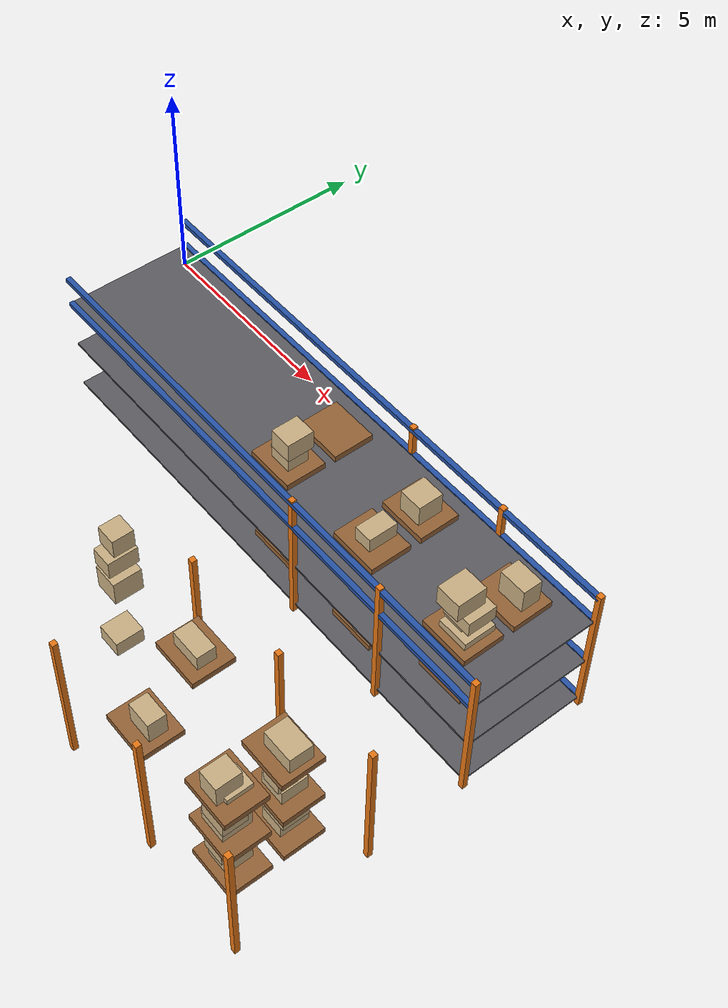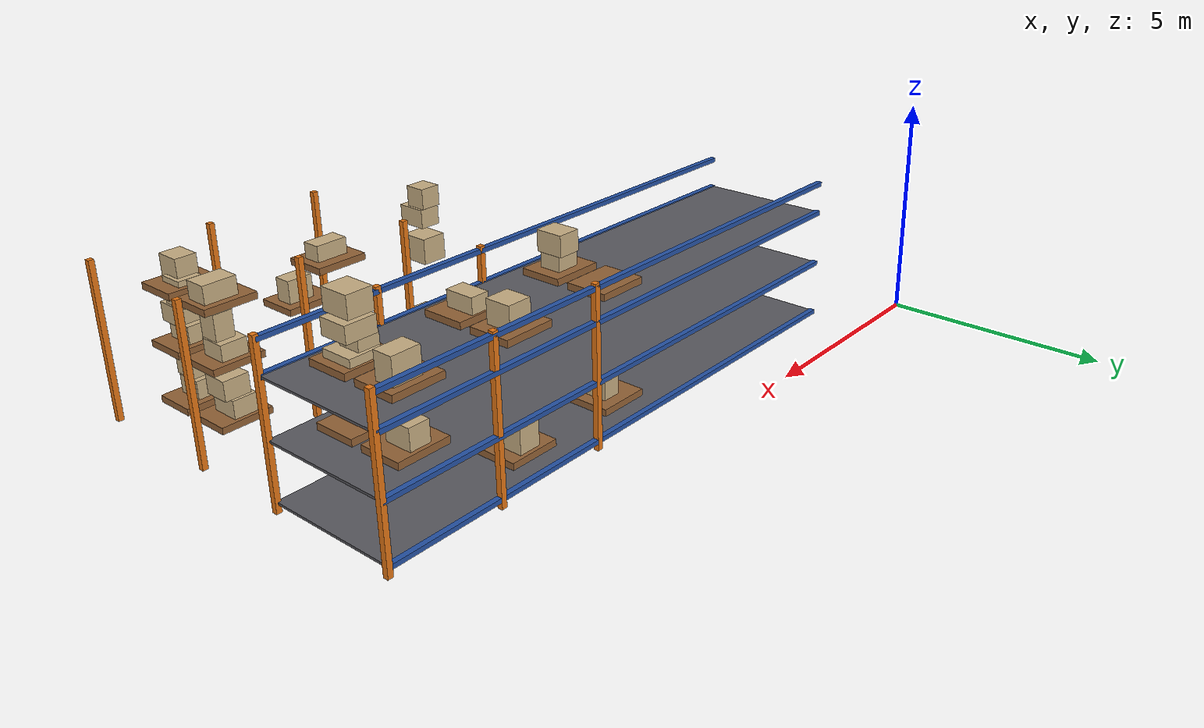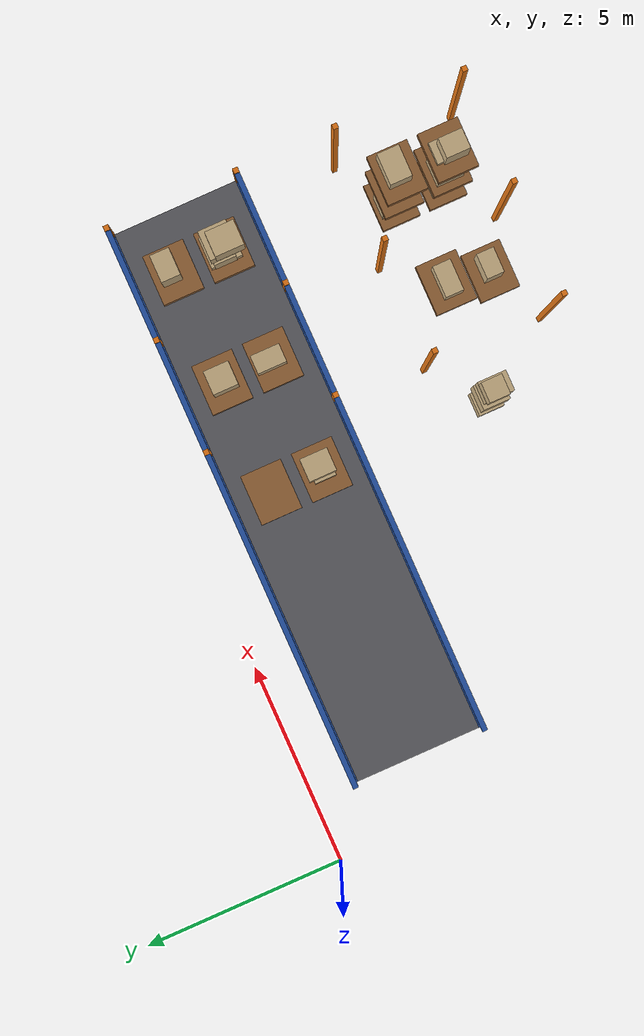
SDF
<sdf version="1.7">
 <world name="default">
  <model name="warehouse_racks">
   <static>1</static>
   <link name="r01_u3_0">
    <pose>9.8 -9.5 1.75 0 0 0</pose>
    <collision name="c"><geometry><box><size>0.12 0.12 3.5</size></box></geometry></collision>
    <visual name="v">
     <geometry><box><size>0.12 0.12 3.5</size></box></geometry>
     <material>
      <ambient>0.910 0.471 0.086 1</ambient>
      <diffuse>0.910 0.471 0.086 1</diffuse>
      <specular>0.1 0.1 0.1 1</specular>
     </material>
    </visual>
   </link>
   <link name="r01_u3_1">
    <pose>9.8 -6.5 1.75 0 0 0</pose>
    <collision name="c"><geometry><box><size>0.12 0.12 3.5</size></box></geometry></collision>
    <visual name="v">
     <geometry><box><size>0.12 0.12 3.5</size></box></geometry>
     <material>
      <ambient>0.910 0.471 0.086 1</ambient>
      <diffuse>0.910 0.471 0.086 1</diffuse>
      <specular>0.1 0.1 0.1 1</specular>
     </material>
    </visual>
   </link>
   <link name="r01_u4_0">
    <pose>12.4 -9.5 1.75 0 0 0</pose>
    <collision name="c"><geometry><box><size>0.12 0.12 3.5</size></box></geometry></collision>
    <visual name="v">
     <geometry><box><size>0.12 0.12 3.5</size></box></geometry>
     <material>
      <ambient>0.910 0.471 0.086 1</ambient>
      <diffuse>0.910 0.471 0.086 1</diffuse>
      <specular>0.1 0.1 0.1 1</specular>
     </material>
    </visual>
   </link>
   <link name="r01_u4_1">
    <pose>12.4 -6.5 1.75 0 0 0</pose>
    <collision name="c"><geometry><box><size>0.12 0.12 3.5</size></box></geometry></collision>
    <visual name="v">
     <geometry><box><size>0.12 0.12 3.5</size></box></geometry>
     <material>
      <ambient>0.910 0.471 0.086 1</ambient>
      <diffuse>0.910 0.471 0.086 1</diffuse>
      <specular>0.1 0.1 0.1 1</specular>
     </material>
    </visual>
   </link>
   <link name="r01_u5_0">
    <pose>15 -9.5 1.75 0 0 0</pose>
    <collision name="c"><geometry><box><size>0.12 0.12 3.5</size></box></geometry></collision>
    <visual name="v">
     <geometry><box><size>0.12 0.12 3.5</size></box></geometry>
     <material>
      <ambient>0.910 0.471 0.086 1</ambient>
      <diffuse>0.910 0.471 0.086 1</diffuse>
      <specular>0.1 0.1 0.1 1</specular>
     </material>
    </visual>
   </link>
   <link name="r01_u5_1">
    <pose>15 -6.5 1.75 0 0 0</pose>
    <collision name="c"><geometry><box><size>0.12 0.12 3.5</size></box></geometry></collision>
    <visual name="v">
     <geometry><box><size>0.12 0.12 3.5</size></box></geometry>
     <material>
      <ambient>0.910 0.471 0.086 1</ambient>
      <diffuse>0.910 0.471 0.086 1</diffuse>
      <specular>0.1 0.1 0.1 1</specular>
     </material>
    </visual>
   </link>
   <link name="r11_u3_0">
    <pose>9.8 -4.2 1.75 0 0 0</pose>
    <collision name="c"><geometry><box><size>0.12 0.12 3.5</size></box></geometry></collision>
    <visual name="v">
     <geometry><box><size>0.12 0.12 3.5</size></box></geometry>
     <material>
      <ambient>0.910 0.471 0.086 1</ambient>
      <diffuse>0.910 0.471 0.086 1</diffuse>
      <specular>0.1 0.1 0.1 1</specular>
     </material>
    </visual>
   </link>
   <link name="r11_u3_1">
    <pose>9.8 -1.2 1.75 0 0 0</pose>
    <collision name="c"><geometry><box><size>0.12 0.12 3.5</size></box></geometry></collision>
    <visual name="v">
     <geometry><box><size>0.12 0.12 3.5</size></box></geometry>
     <material>
      <ambient>0.910 0.471 0.086 1</ambient>
      <diffuse>0.910 0.471 0.086 1</diffuse>
      <specular>0.1 0.1 0.1 1</specular>
     </material>
    </visual>
   </link>
   <link name="r11_u4_0">
    <pose>12.4 -4.2 1.75 0 0 0</pose>
    <collision name="c"><geometry><box><size>0.12 0.12 3.5</size></box></geometry></collision>
    <visual name="v">
     <geometry><box><size>0.12 0.12 3.5</size></box></geometry>
     <material>
      <ambient>0.910 0.471 0.086 1</ambient>
      <diffuse>0.910 0.471 0.086 1</diffuse>
      <specular>0.1 0.1 0.1 1</specular>
     </material>
    </visual>
   </link>
   <link name="r11_u4_1">
    <pose>12.4 -1.2 1.75 0 0 0</pose>
    <collision name="c"><geometry><box><size>0.12 0.12 3.5</size></box></geometry></collision>
    <visual name="v">
     <geometry><box><size>0.12 0.12 3.5</size></box></geometry>
     <material>
      <ambient>0.910 0.471 0.086 1</ambient>
      <diffuse>0.910 0.471 0.086 1</diffuse>
      <specular>0.1 0.1 0.1 1</specular>
     </material>
    </visual>
   </link>
   <link name="r11_u5_0">
    <pose>15 -4.2 1.75 0 0 0</pose>
    <collision name="c"><geometry><box><size>0.12 0.12 3.5</size></box></geometry></collision>
    <visual name="v">
     <geometry><box><size>0.12 0.12 3.5</size></box></geometry>
     <material>
      <ambient>0.910 0.471 0.086 1</ambient>
      <diffuse>0.910 0.471 0.086 1</diffuse>
      <specular>0.1 0.1 0.1 1</specular>
     </material>
    </visual>
   </link>
   <link name="r11_u5_1">
    <pose>15 -1.2 1.75 0 0 0</pose>
    <collision name="c"><geometry><box><size>0.12 0.12 3.5</size></box></geometry></collision>
    <visual name="v">
     <geometry><box><size>0.12 0.12 3.5</size></box></geometry>
     <material>
      <ambient>0.910 0.471 0.086 1</ambient>
      <diffuse>0.910 0.471 0.086 1</diffuse>
      <specular>0.1 0.1 0.1 1</specular>
     </material>
    </visual>
   </link>
   <link name="r11_b0_1">
    <pose>8.5 -1.2 0.2 0 0 0</pose>
    <collision name="c"><geometry><box><size>13 0.12 0.1</size></box></geometry></collision>
    <visual name="v">
     <geometry><box><size>13 0.12 0.1</size></box></geometry>
     <material>
      <ambient>0.149 0.329 0.659 1</ambient>
      <diffuse>0.149 0.329 0.659 1</diffuse>
      <specular>0.1 0.1 0.1 1</specular>
     </material>
    </visual>
   </link>
   <link name="r11_b1_1">
    <pose>8.5 -1.2 1.45 0 0 0</pose>
    <collision name="c"><geometry><box><size>13 0.12 0.1</size></box></geometry></collision>
    <visual name="v">
     <geometry><box><size>13 0.12 0.1</size></box></geometry>
     <material>
      <ambient>0.149 0.329 0.659 1</ambient>
      <diffuse>0.149 0.329 0.659 1</diffuse>
      <specular>0.1 0.1 0.1 1</specular>
     </material>
    </visual>
   </link>
   <link name="r11_b2_0">
    <pose>8.5 -4.2 2.7 0 0 0</pose>
    <collision name="c"><geometry><box><size>13 0.12 0.1</size></box></geometry></collision>
    <visual name="v">
     <geometry><box><size>13 0.12 0.1</size></box></geometry>
     <material>
      <ambient>0.149 0.329 0.659 1</ambient>
      <diffuse>0.149 0.329 0.659 1</diffuse>
      <specular>0.1 0.1 0.1 1</specular>
     </material>
    </visual>
   </link>
   <link name="r11_b2_1">
    <pose>8.5 -1.2 2.7 0 0 0</pose>
    <collision name="c"><geometry><box><size>13 0.12 0.1</size></box></geometry></collision>
    <visual name="v">
     <geometry><box><size>13 0.12 0.1</size></box></geometry>
     <material>
      <ambient>0.149 0.329 0.659 1</ambient>
      <diffuse>0.149 0.329 0.659 1</diffuse>
      <specular>0.1 0.1 0.1 1</specular>
     </material>
    </visual>
   </link>
   <link name="r11_b3_0">
    <pose>8.5 -4.2 3.4 0 0 0</pose>
    <collision name="c"><geometry><box><size>13 0.12 0.1</size></box></geometry></collision>
    <visual name="v">
     <geometry><box><size>13 0.12 0.1</size></box></geometry>
     <material>
      <ambient>0.149 0.329 0.659 1</ambient>
      <diffuse>0.149 0.329 0.659 1</diffuse>
      <specular>0.1 0.1 0.1 1</specular>
     </material>
    </visual>
   </link>
   <link name="r11_b3_1">
    <pose>8.5 -1.2 3.4 0 0 0</pose>
    <collision name="c"><geometry><box><size>13 0.12 0.1</size></box></geometry></collision>
    <visual name="v">
     <geometry><box><size>13 0.12 0.1</size></box></geometry>
     <material>
      <ambient>0.149 0.329 0.659 1</ambient>
      <diffuse>0.149 0.329 0.659 1</diffuse>
      <specular>0.1 0.1 0.1 1</specular>
     </material>
    </visual>
   </link>
   <link name="r11_d0">
    <pose>8.5 -2.7 0.2 0 0 0</pose>
    <collision name="c"><geometry><box><size>13 3 0.05</size></box></geometry></collision>
    <visual name="v">
     <geometry><box><size>13 3 0.05</size></box></geometry>
     <material>
      <ambient>0.361 0.361 0.384 1</ambient>
      <diffuse>0.361 0.361 0.384 1</diffuse>
      <specular>0.1 0.1 0.1 1</specular>
     </material>
    </visual>
   </link>
   <link name="r11_d1">
    <pose>8.5 -2.7 1.45 0 0 0</pose>
    <collision name="c"><geometry><box><size>13 3 0.05</size></box></geometry></collision>
    <visual name="v">
     <geometry><box><size>13 3 0.05</size></box></geometry>
     <material>
      <ambient>0.361 0.361 0.384 1</ambient>
      <diffuse>0.361 0.361 0.384 1</diffuse>
      <specular>0.1 0.1 0.1 1</specular>
     </material>
    </visual>
   </link>
   <link name="r11_d2">
    <pose>8.5 -2.7 2.7 0 0 0</pose>
    <collision name="c"><geometry><box><size>13 3 0.05</size></box></geometry></collision>
    <visual name="v">
     <geometry><box><size>13 3 0.05</size></box></geometry>
     <material>
      <ambient>0.361 0.361 0.384 1</ambient>
      <diffuse>0.361 0.361 0.384 1</diffuse>
      <specular>0.1 0.1 0.1 1</specular>
     </material>
    </visual>
   </link>
  </model>
  <model name="warehouse_loads">
   <static>1</static>
   <link name="r01L0_2_1_c0">
    <pose>8.52864 -7.48497 0.589968 0 0 0</pose>
    <collision name="c"><geometry><box><size>0.569114 0.634107 0.379936</size></box></geometry></collision>
    <visual name="v">
     <geometry><box><size>0.569114 0.634107 0.379936</size></box></geometry>
     <material>
      <ambient>0.792 0.690 0.518 1</ambient>
      <diffuse>0.792 0.690 0.518 1</diffuse>
      <specular>0.1 0.1 0.1 1</specular>
     </material>
    </visual>
   </link>
   <link name="r01L0_4_0_p">
    <pose>13.7 -8.6 0.325 0 0 0</pose>
    <collision name="c"><geometry><box><size>1.15 0.95 0.15</size></box></geometry></collision>
    <visual name="v">
     <geometry><box><size>1.15 0.95 0.15</size></box></geometry>
     <material>
      <ambient>0.588 0.392 0.216 1</ambient>
      <diffuse>0.588 0.392 0.216 1</diffuse>
      <specular>0.1 0.1 0.1 1</specular>
     </material>
    </visual>
   </link>
   <link name="r01L0_4_0_c0">
    <pose>13.6349 -8.58883 0.605511 0 0 0</pose>
    <collision name="c"><geometry><box><size>0.549598 0.591725 0.411021</size></box></geometry></collision>
    <visual name="v">
     <geometry><box><size>0.549598 0.591725 0.411021</size></box></geometry>
     <material>
      <ambient>0.792 0.690 0.518 1</ambient>
      <diffuse>0.792 0.690 0.518 1</diffuse>
      <specular>0.1 0.1 0.1 1</specular>
     </material>
    </visual>
   </link>
   <link name="r01L0_4_0_c1">
    <pose>13.6404 -8.69598 1.08719 0 0 0</pose>
    <collision name="c"><geometry><box><size>0.511751 0.528907 0.55234</size></box></geometry></collision>
    <visual name="v">
     <geometry><box><size>0.511751 0.528907 0.55234</size></box></geometry>
     <material>
      <ambient>0.792 0.690 0.518 1</ambient>
      <diffuse>0.792 0.690 0.518 1</diffuse>
      <specular>0.1 0.1 0.1 1</specular>
     </material>
    </visual>
   </link>
   <link name="r01L0_4_1_p">
    <pose>13.7 -7.4 0.325 0 0 0</pose>
    <collision name="c"><geometry><box><size>1.15 0.95 0.15</size></box></geometry></collision>
    <visual name="v">
     <geometry><box><size>1.15 0.95 0.15</size></box></geometry>
     <material>
      <ambient>0.588 0.392 0.216 1</ambient>
      <diffuse>0.588 0.392 0.216 1</diffuse>
      <specular>0.1 0.1 0.1 1</specular>
     </material>
    </visual>
   </link>
   <link name="r01L0_4_1_c0">
    <pose>13.654 -7.34958 0.601251 0 0 0</pose>
    <collision name="c"><geometry><box><size>0.533993 0.661044 0.402501</size></box></geometry></collision>
    <visual name="v">
     <geometry><box><size>0.533993 0.661044 0.402501</size></box></geometry>
     <material>
      <ambient>0.792 0.690 0.518 1</ambient>
      <diffuse>0.792 0.690 0.518 1</diffuse>
      <specular>0.1 0.1 0.1 1</specular>
     </material>
    </visual>
   </link>
   <link name="r01L0_4_1_c1">
    <pose>13.7374 -7.39415 1.02252 0 0 0</pose>
    <collision name="c"><geometry><box><size>0.574351 0.600998 0.440036</size></box></geometry></collision>
    <visual name="v">
     <geometry><box><size>0.574351 0.600998 0.440036</size></box></geometry>
     <material>
      <ambient>0.792 0.690 0.518 1</ambient>
      <diffuse>0.792 0.690 0.518 1</diffuse>
      <specular>0.1 0.1 0.1 1</specular>
     </material>
    </visual>
   </link>
   <link name="r01L1_2_1_c1">
    <pose>8.54435 -7.37053 2.3548 0 0 0</pose>
    <collision name="c"><geometry><box><size>0.582828 0.638726 0.585373</size></box></geometry></collision>
    <visual name="v">
     <geometry><box><size>0.582828 0.638726 0.585373</size></box></geometry>
     <material>
      <ambient>0.792 0.690 0.518 1</ambient>
      <diffuse>0.792 0.690 0.518 1</diffuse>
      <specular>0.1 0.1 0.1 1</specular>
     </material>
    </visual>
   </link>
   <link name="r01L1_3_0_p">
    <pose>11.1 -8.6 1.575 0 0 0</pose>
    <collision name="c"><geometry><box><size>1.15 0.95 0.15</size></box></geometry></collision>
    <visual name="v">
     <geometry><box><size>1.15 0.95 0.15</size></box></geometry>
     <material>
      <ambient>0.588 0.392 0.216 1</ambient>
      <diffuse>0.588 0.392 0.216 1</diffuse>
      <specular>0.1 0.1 0.1 1</specular>
     </material>
    </visual>
   </link>
   <link name="r01L1_3_0_c0">
    <pose>11.1925 -8.57471 1.91438 0 0 0</pose>
    <collision name="c"><geometry><box><size>0.599284 0.413157 0.528755</size></box></geometry></collision>
    <visual name="v">
     <geometry><box><size>0.599284 0.413157 0.528755</size></box></geometry>
     <material>
      <ambient>0.792 0.690 0.518 1</ambient>
      <diffuse>0.792 0.690 0.518 1</diffuse>
      <specular>0.1 0.1 0.1 1</specular>
     </material>
    </visual>
   </link>
   <link name="r01L1_4_0_p">
    <pose>13.7 -8.6 1.575 0 0 0</pose>
    <collision name="c"><geometry><box><size>1.15 0.95 0.15</size></box></geometry></collision>
    <visual name="v">
     <geometry><box><size>1.15 0.95 0.15</size></box></geometry>
     <material>
      <ambient>0.588 0.392 0.216 1</ambient>
      <diffuse>0.588 0.392 0.216 1</diffuse>
      <specular>0.1 0.1 0.1 1</specular>
     </material>
    </visual>
   </link>
   <link name="r01L1_4_0_c0">
    <pose>13.6141 -8.59511 1.83902 0 0 0</pose>
    <collision name="c"><geometry><box><size>0.622702 0.644504 0.378033</size></box></geometry></collision>
    <visual name="v">
     <geometry><box><size>0.622702 0.644504 0.378033</size></box></geometry>
     <material>
      <ambient>0.792 0.690 0.518 1</ambient>
      <diffuse>0.792 0.690 0.518 1</diffuse>
      <specular>0.1 0.1 0.1 1</specular>
     </material>
    </visual>
   </link>
   <link name="r01L1_4_0_c1">
    <pose>13.7202 -8.69791 2.23098 0 0 0</pose>
    <collision name="c"><geometry><box><size>0.604012 0.535829 0.405896</size></box></geometry></collision>
    <visual name="v">
     <geometry><box><size>0.604012 0.535829 0.405896</size></box></geometry>
     <material>
      <ambient>0.792 0.690 0.518 1</ambient>
      <diffuse>0.792 0.690 0.518 1</diffuse>
      <specular>0.1 0.1 0.1 1</specular>
     </material>
    </visual>
   </link>
   <link name="r01L1_4_0_c2">
    <pose>13.7289 -8.52325 2.7288 0 0 0</pose>
    <collision name="c"><geometry><box><size>0.505532 0.561242 0.589735</size></box></geometry></collision>
    <visual name="v">
     <geometry><box><size>0.505532 0.561242 0.589735</size></box></geometry>
     <material>
      <ambient>0.792 0.690 0.518 1</ambient>
      <diffuse>0.792 0.690 0.518 1</diffuse>
      <specular>0.1 0.1 0.1 1</specular>
     </material>
    </visual>
   </link>
   <link name="r01L1_4_1_p">
    <pose>13.7 -7.4 1.575 0 0 0</pose>
    <collision name="c"><geometry><box><size>1.15 0.95 0.15</size></box></geometry></collision>
    <visual name="v">
     <geometry><box><size>1.15 0.95 0.15</size></box></geometry>
     <material>
      <ambient>0.588 0.392 0.216 1</ambient>
      <diffuse>0.588 0.392 0.216 1</diffuse>
      <specular>0.1 0.1 0.1 1</specular>
     </material>
    </visual>
   </link>
   <link name="r01L1_4_1_c0">
    <pose>13.6824 -7.37007 1.82866 0 0 0</pose>
    <collision name="c"><geometry><box><size>0.584197 0.591451 0.35732</size></box></geometry></collision>
    <visual name="v">
     <geometry><box><size>0.584197 0.591451 0.35732</size></box></geometry>
     <material>
      <ambient>0.792 0.690 0.518 1</ambient>
      <diffuse>0.792 0.690 0.518 1</diffuse>
      <specular>0.1 0.1 0.1 1</specular>
     </material>
    </visual>
   </link>
   <link name="r01L1_4_1_c1">
    <pose>13.7294 -7.48378 2.29293 0 0 0</pose>
    <collision name="c"><geometry><box><size>0.419358 0.46794 0.571212</size></box></geometry></collision>
    <visual name="v">
     <geometry><box><size>0.419358 0.46794 0.571212</size></box></geometry>
     <material>
      <ambient>0.792 0.690 0.518 1</ambient>
      <diffuse>0.792 0.690 0.518 1</diffuse>
      <specular>0.1 0.1 0.1 1</specular>
     </material>
    </visual>
   </link>
   <link name="r01L2_2_1_c0">
    <pose>8.59039 -7.40085 3.11187 0 0 0</pose>
    <collision name="c"><geometry><box><size>0.477505 0.666165 0.423733</size></box></geometry></collision>
    <visual name="v">
     <geometry><box><size>0.477505 0.666165 0.423733</size></box></geometry>
     <material>
      <ambient>0.792 0.690 0.518 1</ambient>
      <diffuse>0.792 0.690 0.518 1</diffuse>
      <specular>0.1 0.1 0.1 1</specular>
     </material>
    </visual>
   </link>
   <link name="r01L2_2_1_c1">
    <pose>8.53306 -7.31025 3.55086 0 0 0</pose>
    <collision name="c"><geometry><box><size>0.46556 0.478163 0.454257</size></box></geometry></collision>
    <visual name="v">
     <geometry><box><size>0.46556 0.478163 0.454257</size></box></geometry>
     <material>
      <ambient>0.792 0.690 0.518 1</ambient>
      <diffuse>0.792 0.690 0.518 1</diffuse>
      <specular>0.1 0.1 0.1 1</specular>
     </material>
    </visual>
   </link>
   <link name="r01L2_3_1_p">
    <pose>11.1 -7.4 2.825 0 0 0</pose>
    <collision name="c"><geometry><box><size>1.15 0.95 0.15</size></box></geometry></collision>
    <visual name="v">
     <geometry><box><size>1.15 0.95 0.15</size></box></geometry>
     <material>
      <ambient>0.588 0.392 0.216 1</ambient>
      <diffuse>0.588 0.392 0.216 1</diffuse>
      <specular>0.1 0.1 0.1 1</specular>
     </material>
    </visual>
   </link>
   <link name="r01L2_3_1_c0">
    <pose>11.1192 -7.41692 3.07795 0 0 0</pose>
    <collision name="c"><geometry><box><size>0.722673 0.419025 0.355907</size></box></geometry></collision>
    <visual name="v">
     <geometry><box><size>0.722673 0.419025 0.355907</size></box></geometry>
     <material>
      <ambient>0.792 0.690 0.518 1</ambient>
      <diffuse>0.792 0.690 0.518 1</diffuse>
      <specular>0.1 0.1 0.1 1</specular>
     </material>
    </visual>
   </link>
   <link name="r01L2_4_0_p">
    <pose>13.7 -8.6 2.825 0 0 0</pose>
    <collision name="c"><geometry><box><size>1.15 0.95 0.15</size></box></geometry></collision>
    <visual name="v">
     <geometry><box><size>1.15 0.95 0.15</size></box></geometry>
     <material>
      <ambient>0.588 0.392 0.216 1</ambient>
      <diffuse>0.588 0.392 0.216 1</diffuse>
      <specular>0.1 0.1 0.1 1</specular>
     </material>
    </visual>
   </link>
   <link name="r01L2_4_0_c0">
    <pose>13.6628 -8.67736 3.164 0 0 0</pose>
    <collision name="c"><geometry><box><size>0.464437 0.557375 0.528009</size></box></geometry></collision>
    <visual name="v">
     <geometry><box><size>0.464437 0.557375 0.528009</size></box></geometry>
     <material>
      <ambient>0.792 0.690 0.518 1</ambient>
      <diffuse>0.792 0.690 0.518 1</diffuse>
      <specular>0.1 0.1 0.1 1</specular>
     </material>
    </visual>
   </link>
   <link name="r01L2_4_1_p">
    <pose>13.7 -7.4 2.825 0 0 0</pose>
    <collision name="c"><geometry><box><size>1.15 0.95 0.15</size></box></geometry></collision>
    <visual name="v">
     <geometry><box><size>1.15 0.95 0.15</size></box></geometry>
     <material>
      <ambient>0.588 0.392 0.216 1</ambient>
      <diffuse>0.588 0.392 0.216 1</diffuse>
      <specular>0.1 0.1 0.1 1</specular>
     </material>
    </visual>
   </link>
   <link name="r01L2_4_1_c0">
    <pose>13.7872 -7.35074 3.09819 0 0 0</pose>
    <collision name="c"><geometry><box><size>0.726058 0.515235 0.396378</size></box></geometry></collision>
    <visual name="v">
     <geometry><box><size>0.726058 0.515235 0.396378</size></box></geometry>
     <material>
      <ambient>0.792 0.690 0.518 1</ambient>
      <diffuse>0.792 0.690 0.518 1</diffuse>
      <specular>0.1 0.1 0.1 1</specular>
     </material>
    </visual>
   </link>
   <link name="r11L0_2_0_p">
    <pose>8.5 -3.3 0.325 0 0 0</pose>
    <collision name="c"><geometry><box><size>1.15 0.95 0.15</size></box></geometry></collision>
    <visual name="v">
     <geometry><box><size>1.15 0.95 0.15</size></box></geometry>
     <material>
      <ambient>0.588 0.392 0.216 1</ambient>
      <diffuse>0.588 0.392 0.216 1</diffuse>
      <specular>0.1 0.1 0.1 1</specular>
     </material>
    </visual>
   </link>
   <link name="r11L0_2_1_p">
    <pose>8.5 -2.1 0.325 0 0 0</pose>
    <collision name="c"><geometry><box><size>1.15 0.95 0.15</size></box></geometry></collision>
    <visual name="v">
     <geometry><box><size>1.15 0.95 0.15</size></box></geometry>
     <material>
      <ambient>0.588 0.392 0.216 1</ambient>
      <diffuse>0.588 0.392 0.216 1</diffuse>
      <specular>0.1 0.1 0.1 1</specular>
     </material>
    </visual>
   </link>
   <link name="r11L0_2_1_c0">
    <pose>8.59017 -2.17276 0.622233 0 0 0</pose>
    <collision name="c"><geometry><box><size>0.418993 0.576373 0.444466</size></box></geometry></collision>
    <visual name="v">
     <geometry><box><size>0.418993 0.576373 0.444466</size></box></geometry>
     <material>
      <ambient>0.792 0.690 0.518 1</ambient>
      <diffuse>0.792 0.690 0.518 1</diffuse>
      <specular>0.1 0.1 0.1 1</specular>
     </material>
    </visual>
   </link>
   <link name="r11L0_3_0_p">
    <pose>11.1 -3.3 0.325 0 0 0</pose>
    <collision name="c"><geometry><box><size>1.15 0.95 0.15</size></box></geometry></collision>
    <visual name="v">
     <geometry><box><size>1.15 0.95 0.15</size></box></geometry>
     <material>
      <ambient>0.588 0.392 0.216 1</ambient>
      <diffuse>0.588 0.392 0.216 1</diffuse>
      <specular>0.1 0.1 0.1 1</specular>
     </material>
    </visual>
   </link>
   <link name="r11L0_3_0_c0">
    <pose>11.0387 -3.20365 0.676874 0 0 0</pose>
    <collision name="c"><geometry><box><size>0.748643 0.65623 0.553747</size></box></geometry></collision>
    <visual name="v">
     <geometry><box><size>0.748643 0.65623 0.553747</size></box></geometry>
     <material>
      <ambient>0.792 0.690 0.518 1</ambient>
      <diffuse>0.792 0.690 0.518 1</diffuse>
      <specular>0.1 0.1 0.1 1</specular>
     </material>
    </visual>
   </link>
   <link name="r11L0_3_1_p">
    <pose>11.1 -2.1 0.325 0 0 0</pose>
    <collision name="c"><geometry><box><size>1.15 0.95 0.15</size></box></geometry></collision>
    <visual name="v">
     <geometry><box><size>1.15 0.95 0.15</size></box></geometry>
     <material>
      <ambient>0.588 0.392 0.216 1</ambient>
      <diffuse>0.588 0.392 0.216 1</diffuse>
      <specular>0.1 0.1 0.1 1</specular>
     </material>
    </visual>
   </link>
   <link name="r11L0_3_1_c0">
    <pose>11.1372 -2.05578 0.674372 0 0 0</pose>
    <collision name="c"><geometry><box><size>0.500759 0.683848 0.548744</size></box></geometry></collision>
    <visual name="v">
     <geometry><box><size>0.500759 0.683848 0.548744</size></box></geometry>
     <material>
      <ambient>0.792 0.690 0.518 1</ambient>
      <diffuse>0.792 0.690 0.518 1</diffuse>
      <specular>0.1 0.1 0.1 1</specular>
     </material>
    </visual>
   </link>
   <link name="r11L0_3_1_c1">
    <pose>11.0504 -2.13523 1.20005 0 0 0</pose>
    <collision name="c"><geometry><box><size>0.477394 0.691563 0.502611</size></box></geometry></collision>
    <visual name="v">
     <geometry><box><size>0.477394 0.691563 0.502611</size></box></geometry>
     <material>
      <ambient>0.792 0.690 0.518 1</ambient>
      <diffuse>0.792 0.690 0.518 1</diffuse>
      <specular>0.1 0.1 0.1 1</specular>
     </material>
    </visual>
   </link>
   <link name="r11L1_4_0_p">
    <pose>13.7 -3.3 1.575 0 0 0</pose>
    <collision name="c"><geometry><box><size>1.15 0.95 0.15</size></box></geometry></collision>
    <visual name="v">
     <geometry><box><size>1.15 0.95 0.15</size></box></geometry>
     <material>
      <ambient>0.588 0.392 0.216 1</ambient>
      <diffuse>0.588 0.392 0.216 1</diffuse>
      <specular>0.1 0.1 0.1 1</specular>
     </material>
    </visual>
   </link>
   <link name="r11L1_4_0_c0">
    <pose>13.646 -3.27693 1.83517 0 0 0</pose>
    <collision name="c"><geometry><box><size>0.451168 0.51579 0.370346</size></box></geometry></collision>
    <visual name="v">
     <geometry><box><size>0.451168 0.51579 0.370346</size></box></geometry>
     <material>
      <ambient>0.792 0.690 0.518 1</ambient>
      <diffuse>0.792 0.690 0.518 1</diffuse>
      <specular>0.1 0.1 0.1 1</specular>
     </material>
    </visual>
   </link>
   <link name="r11L1_4_0_c1">
    <pose>13.662 -3.20681 2.25986 0 0 0</pose>
    <collision name="c"><geometry><box><size>0.735293 0.503734 0.479027</size></box></geometry></collision>
    <visual name="v">
     <geometry><box><size>0.735293 0.503734 0.479027</size></box></geometry>
     <material>
      <ambient>0.792 0.690 0.518 1</ambient>
      <diffuse>0.792 0.690 0.518 1</diffuse>
      <specular>0.1 0.1 0.1 1</specular>
     </material>
    </visual>
   </link>
   <link name="r11L1_4_0_c2">
    <pose>13.7466 -3.25058 2.78634 0 0 0</pose>
    <collision name="c"><geometry><box><size>0.704604 0.724961 0.573931</size></box></geometry></collision>
    <visual name="v">
     <geometry><box><size>0.704604 0.724961 0.573931</size></box></geometry>
     <material>
      <ambient>0.792 0.690 0.518 1</ambient>
      <diffuse>0.792 0.690 0.518 1</diffuse>
      <specular>0.1 0.1 0.1 1</specular>
     </material>
    </visual>
   </link>
   <link name="r11L1_4_1_p">
    <pose>13.7 -2.1 1.575 0 0 0</pose>
    <collision name="c"><geometry><box><size>1.15 0.95 0.15</size></box></geometry></collision>
    <visual name="v">
     <geometry><box><size>1.15 0.95 0.15</size></box></geometry>
     <material>
      <ambient>0.588 0.392 0.216 1</ambient>
      <diffuse>0.588 0.392 0.216 1</diffuse>
      <specular>0.1 0.1 0.1 1</specular>
     </material>
    </visual>
   </link>
   <link name="r11L1_4_1_c0">
    <pose>13.7025 -2.02089 1.87903 0 0 0</pose>
    <collision name="c"><geometry><box><size>0.452278 0.615618 0.458058</size></box></geometry></collision>
    <visual name="v">
     <geometry><box><size>0.452278 0.615618 0.458058</size></box></geometry>
     <material>
      <ambient>0.792 0.690 0.518 1</ambient>
      <diffuse>0.792 0.690 0.518 1</diffuse>
      <specular>0.1 0.1 0.1 1</specular>
     </material>
    </visual>
   </link>
   <link name="r11L2_2_0_p">
    <pose>8.5 -3.3 2.825 0 0 0</pose>
    <collision name="c"><geometry><box><size>1.15 0.95 0.15</size></box></geometry></collision>
    <visual name="v">
     <geometry><box><size>1.15 0.95 0.15</size></box></geometry>
     <material>
      <ambient>0.588 0.392 0.216 1</ambient>
      <diffuse>0.588 0.392 0.216 1</diffuse>
      <specular>0.1 0.1 0.1 1</specular>
     </material>
    </visual>
   </link>
   <link name="r11L2_2_0_c0">
    <pose>8.52899 -3.28753 3.07644 0 0 0</pose>
    <collision name="c"><geometry><box><size>0.540684 0.492484 0.352874</size></box></geometry></collision>
    <visual name="v">
     <geometry><box><size>0.540684 0.492484 0.352874</size></box></geometry>
     <material>
      <ambient>0.792 0.690 0.518 1</ambient>
      <diffuse>0.792 0.690 0.518 1</diffuse>
      <specular>0.1 0.1 0.1 1</specular>
     </material>
    </visual>
   </link>
   <link name="r11L2_2_0_c1">
    <pose>8.58743 -3.2533 3.48334 0 0 0</pose>
    <collision name="c"><geometry><box><size>0.522616 0.625961 0.460939</size></box></geometry></collision>
    <visual name="v">
     <geometry><box><size>0.522616 0.625961 0.460939</size></box></geometry>
     <material>
      <ambient>0.792 0.690 0.518 1</ambient>
      <diffuse>0.792 0.690 0.518 1</diffuse>
      <specular>0.1 0.1 0.1 1</specular>
     </material>
    </visual>
   </link>
   <link name="r11L2_2_1_p">
    <pose>8.5 -2.1 2.825 0 0 0</pose>
    <collision name="c"><geometry><box><size>1.15 0.95 0.15</size></box></geometry></collision>
    <visual name="v">
     <geometry><box><size>1.15 0.95 0.15</size></box></geometry>
     <material>
      <ambient>0.588 0.392 0.216 1</ambient>
      <diffuse>0.588 0.392 0.216 1</diffuse>
      <specular>0.1 0.1 0.1 1</specular>
     </material>
    </visual>
   </link>
   <link name="r11L2_3_0_p">
    <pose>11.1 -3.3 2.825 0 0 0</pose>
    <collision name="c"><geometry><box><size>1.15 0.95 0.15</size></box></geometry></collision>
    <visual name="v">
     <geometry><box><size>1.15 0.95 0.15</size></box></geometry>
     <material>
      <ambient>0.588 0.392 0.216 1</ambient>
      <diffuse>0.588 0.392 0.216 1</diffuse>
      <specular>0.1 0.1 0.1 1</specular>
     </material>
    </visual>
   </link>
   <link name="r11L2_3_0_c0">
    <pose>11.1102 -3.21182 3.07654 0 0 0</pose>
    <collision name="c"><geometry><box><size>0.420433 0.672605 0.353088</size></box></geometry></collision>
    <visual name="v">
     <geometry><box><size>0.420433 0.672605 0.353088</size></box></geometry>
     <material>
      <ambient>0.792 0.690 0.518 1</ambient>
      <diffuse>0.792 0.690 0.518 1</diffuse>
      <specular>0.1 0.1 0.1 1</specular>
     </material>
    </visual>
   </link>
   <link name="r11L2_3_1_p">
    <pose>11.1 -2.1 2.825 0 0 0</pose>
    <collision name="c"><geometry><box><size>1.15 0.95 0.15</size></box></geometry></collision>
    <visual name="v">
     <geometry><box><size>1.15 0.95 0.15</size></box></geometry>
     <material>
      <ambient>0.588 0.392 0.216 1</ambient>
      <diffuse>0.588 0.392 0.216 1</diffuse>
      <specular>0.1 0.1 0.1 1</specular>
     </material>
    </visual>
   </link>
   <link name="r11L2_3_1_c0">
    <pose>11.1295 -2.11695 3.15534 0 0 0</pose>
    <collision name="c"><geometry><box><size>0.544612 0.58139 0.510673</size></box></geometry></collision>
    <visual name="v">
     <geometry><box><size>0.544612 0.58139 0.510673</size></box></geometry>
     <material>
      <ambient>0.792 0.690 0.518 1</ambient>
      <diffuse>0.792 0.690 0.518 1</diffuse>
      <specular>0.1 0.1 0.1 1</specular>
     </material>
    </visual>
   </link>
   <link name="r11L2_4_0_p">
    <pose>13.7 -3.3 2.825 0 0 0</pose>
    <collision name="c"><geometry><box><size>1.15 0.95 0.15</size></box></geometry></collision>
    <visual name="v">
     <geometry><box><size>1.15 0.95 0.15</size></box></geometry>
     <material>
      <ambient>0.588 0.392 0.216 1</ambient>
      <diffuse>0.588 0.392 0.216 1</diffuse>
      <specular>0.1 0.1 0.1 1</specular>
     </material>
    </visual>
   </link>
   <link name="r11L2_4_0_c0">
    <pose>13.6097 -3.22213 3.11253 0 0 0</pose>
    <collision name="c"><geometry><box><size>0.461124 0.508284 0.425067</size></box></geometry></collision>
    <visual name="v">
     <geometry><box><size>0.461124 0.508284 0.425067</size></box></geometry>
     <material>
      <ambient>0.792 0.690 0.518 1</ambient>
      <diffuse>0.792 0.690 0.518 1</diffuse>
      <specular>0.1 0.1 0.1 1</specular>
     </material>
    </visual>
   </link>
   <link name="r11L2_4_0_c1">
    <pose>13.7689 -3.25096 3.50086 0 0 0</pose>
    <collision name="c"><geometry><box><size>0.674041 0.65039 0.351587</size></box></geometry></collision>
    <visual name="v">
     <geometry><box><size>0.674041 0.65039 0.351587</size></box></geometry>
     <material>
      <ambient>0.792 0.690 0.518 1</ambient>
      <diffuse>0.792 0.690 0.518 1</diffuse>
      <specular>0.1 0.1 0.1 1</specular>
     </material>
    </visual>
   </link>
   <link name="r11L2_4_0_c2">
    <pose>13.6452 -3.37894 3.90821 0 0 0</pose>
    <collision name="c"><geometry><box><size>0.562843 0.659614 0.463122</size></box></geometry></collision>
    <visual name="v">
     <geometry><box><size>0.562843 0.659614 0.463122</size></box></geometry>
     <material>
      <ambient>0.792 0.690 0.518 1</ambient>
      <diffuse>0.792 0.690 0.518 1</diffuse>
      <specular>0.1 0.1 0.1 1</specular>
     </material>
    </visual>
   </link>
   <link name="r11L2_4_1_p">
    <pose>13.7 -2.1 2.825 0 0 0</pose>
    <collision name="c"><geometry><box><size>1.15 0.95 0.15</size></box></geometry></collision>
    <visual name="v">
     <geometry><box><size>1.15 0.95 0.15</size></box></geometry>
     <material>
      <ambient>0.588 0.392 0.216 1</ambient>
      <diffuse>0.588 0.392 0.216 1</diffuse>
      <specular>0.1 0.1 0.1 1</specular>
     </material>
    </visual>
   </link>
   <link name="r11L2_4_1_c0">
    <pose>13.785 -2.01143 3.18641 0 0 0</pose>
    <collision name="c"><geometry><box><size>0.625407 0.443143 0.572818</size></box></geometry></collision>
    <visual name="v">
     <geometry><box><size>0.625407 0.443143 0.572818</size></box></geometry>
     <material>
      <ambient>0.792 0.690 0.518 1</ambient>
      <diffuse>0.792 0.690 0.518 1</diffuse>
      <specular>0.1 0.1 0.1 1</specular>
     </material>
    </visual>
   </link>
  </model>
 </world>
</sdf>
